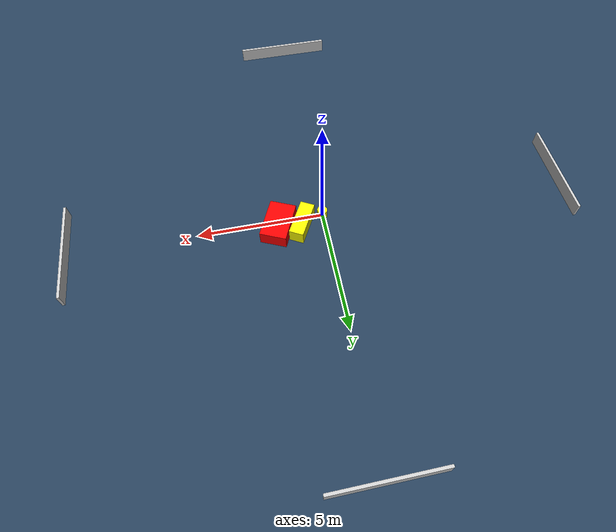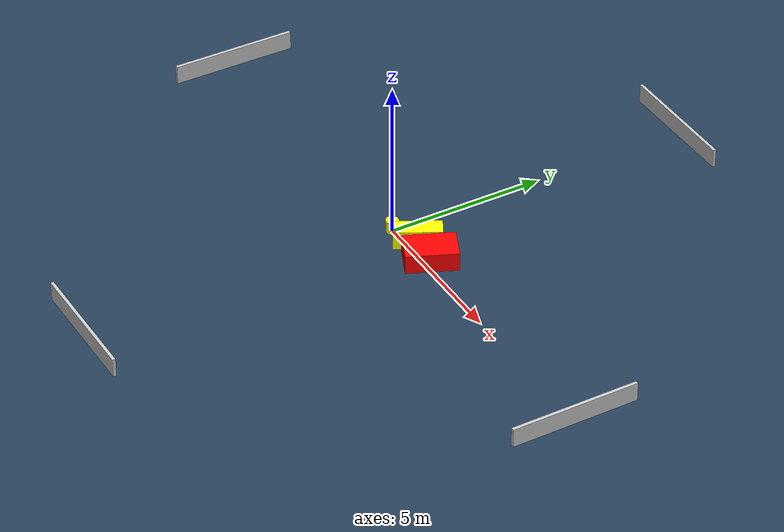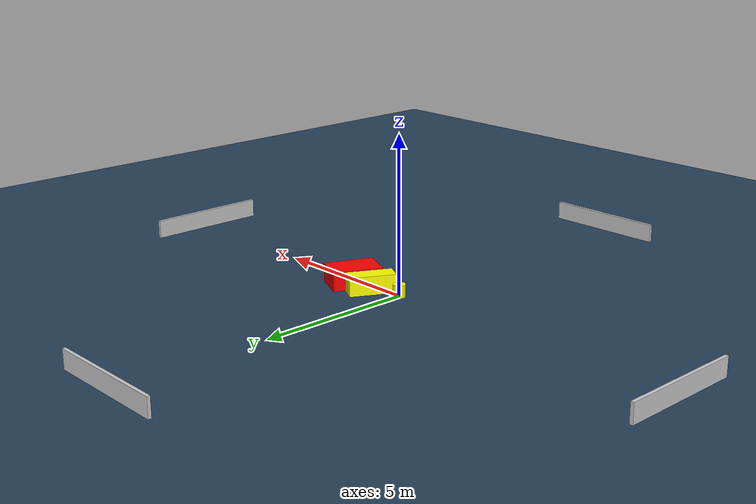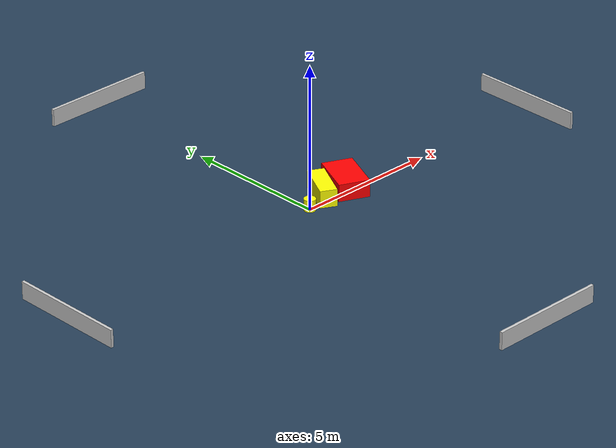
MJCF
<?xml version="1.0" ?>
<mujoco model="generated_environment">
  <option timestep="0.01" integrator="RK4" cone="elliptic"/>
  <default>
    <geom density="1"/>
  </default>
  <asset>
    <texture builtin="gradient" height="3072" name="skybox" rgb1="0.3 0.5 0.7" rgb2="0 0 0" type="skybox" width="512"/>
    <texture builtin="checker" height="300" name="groundplane" rgb1="0.2 0.3 0.4" rgb2="0.1 0.2 0.3" type="2d" width="300"/>
    <material name="groundplane" reflectance="0.2" texrepeat="5 5" texture="groundplane"/>
  </asset>
  <worldbody>
    <light dir="0 0 -1" directional="true" pos="0 0 1.5"/>
    <geom condim="3" friction="0.5 0.005 0.001" material="groundplane" name="floor" pos="0 0 0" size="0 0 0.05" type="plane"/>
    <body name="walls">
      <geom name="wall_1" condim="4" pos="-10.0 0.0 0.3" rgba="0.800000011920929 0.800000011920929 0.800000011920929 1.0" size="0.05 2.0 0.3" type="box"/>
      <geom name="wall_2" condim="4" pos="10.0 0.0 0.3" rgba="0.800000011920929 0.800000011920929 0.800000011920929 1.0" size="0.05 2.0 0.3" type="box"/>
      <geom name="wall_3" condim="4" pos="0.0 -10.0 0.3" rgba="0.800000011920929 0.800000011920929 0.800000011920929 1.0" size="2.0 0.05 0.3" type="box"/>
      <geom name="wall_4" condim="4" pos="0.0 10.0 0.3" rgba="0.800000011920929 0.800000011920929 0.800000011920929 1.0" size="2.0 0.05 0.3" type="box"/>
    </body>
    <body name="robot">
      <joint name="joint_x" type="slide" pos="0 0 0" axis="1 0 0"/>
      <joint name="joint_y" type="slide" pos="0 0 0" axis="0 1 0"/>
      <geom name="robot" type="cylinder" pos="0.0 0.0 0.2" size="0.2 0.2 0.0" mass="5.0" friction="1.0 0.005 0.0001" condim="4" rgba="1.0 1.0 0.0 1.0"/>
    </body>
    <body name="obstacle_1_movable">
      <geom name="obstacle_1_movable" condim="4" pos="0.8834103279684791 0.352995814129931 0.3" euler="0 0 331.7508231411165" friction="0.0 0.005 0.001" rgba="1.0 1.0 0.0 1.0" size="0.285842385034433 0.7367378163138998 0.3" type="box" mass="0.1"/>
      <joint type="free"/>
    </body>
    <body name="obstacle_2_static">
      <geom name="obstacle_2_static" condim="4" pos="1.8114637950552575 0.24184206298123226 0.3" euler="0 0 335.8762000003221" friction="0.0 0.005 0.001" rgba="1.0 0.0 0.0 1.0" size="0.5234277332901818 0.794823275939839 0.3" type="box"/>
    </body>
  </worldbody>
  <actuator>
    <motor name="actuator_x" joint="joint_x" gear="1" ctrlrange="-1 1"/>
    <motor name="actuator_y" joint="joint_y" gear="1" ctrlrange="-1 1"/>
  </actuator>
</mujoco>
